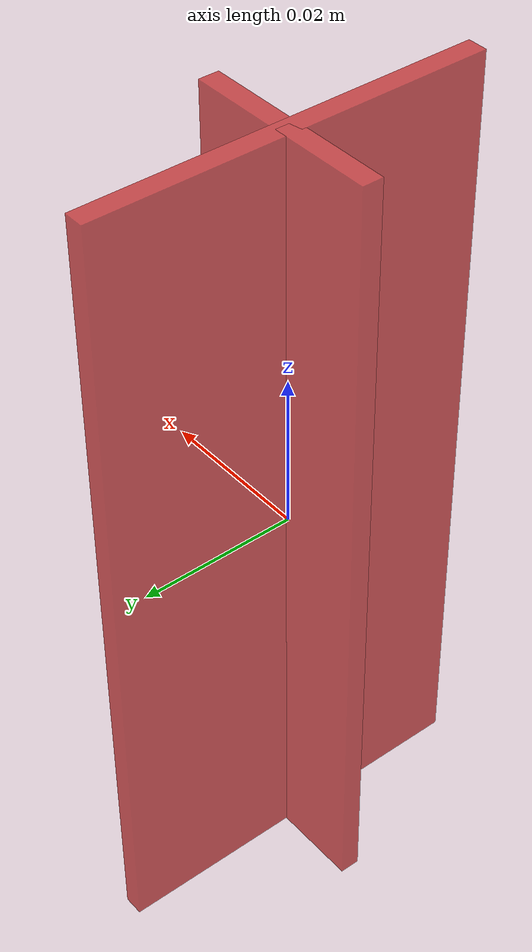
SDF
<?xml version='1.0'?>
<sdf version='1.7'>
  <model name='marker_v2'>
    <link name='link'>
      <inertial>
        <mass>1</mass>
        <inertia>
          <ixx>0.166667</ixx>
          <ixy>0</ixy>
          <ixz>0</ixz>
          <iyy>0.166667</iyy>
          <iyz>0</iyz>
          <izz>0.166667</izz>
        </inertia>
        <pose>0 0 0 0 -0 0</pose>
      </inertial>
      <self_collide>0</self_collide>
      <enable_wind>0</enable_wind>
      <kinematic>0</kinematic>
      <pose>0 0 0 0 -0 0</pose>
      <gravity>0</gravity>
      <visual name='visual'>
        <geometry>
          <box>
            <size>0.025036 0.002564 0.102685</size>
          </box>
        </geometry>
        <material>
          <script>
            <name>Gazebo/Red</name>
            <uri>file://media/materials/scripts/gazebo.material</uri>
          </script>
          <shader type='pixel'>
            <normal_map>__default__</normal_map>
          </shader>
          <diffuse>0.9 0.25 0.1 1</diffuse>
          <ambient>0.3 0.3 0.3 1</ambient>
          <specular>0.01 0.01 0.01 1</specular>
          <emissive>0 0 0 1</emissive>
        </material>
        <pose>0 0 0 0 -0 0</pose>
        <transparency>0.25</transparency>
        <cast_shadows>0</cast_shadows>
      </visual>
    </link>
    <link name='link_clone'>
      <inertial>
        <mass>1</mass>
        <inertia>
          <ixx>0.166667</ixx>
          <ixy>0</ixy>
          <ixz>0</ixz>
          <iyy>0.166667</iyy>
          <iyz>0</iyz>
          <izz>0.166667</izz>
        </inertia>
        <pose>0 0 0 0 -0 0</pose>
      </inertial>
      <self_collide>0</self_collide>
      <enable_wind>0</enable_wind>
      <kinematic>0</kinematic>
      <pose>0 0 0 0 -0 0</pose>
      <gravity>0</gravity>
      <visual name='visual'>
        <geometry>
          <box>
            <size>0.002564 0.050036 0.102685</size>
          </box>
        </geometry>
        <material>
          <script>
            <name>Gazebo/Red</name>
            <uri>file://media/materials/scripts/gazebo.material</uri>
          </script>
          <shader type='pixel'>
            <normal_map>__default__</normal_map>
          </shader>
          <diffuse>0.9 0.25 0.1 1</diffuse>
          <ambient>0.3 0.3 0.3 1</ambient>
          <specular>0.01 0.01 0.01 1</specular>
          <emissive>0 0 0 1</emissive>
        </material>
        <pose>0 0 0 0 -0 0</pose>
        <transparency>0.25</transparency>
        <cast_shadows>0</cast_shadows>
      </visual>
    </link>
    <static>1</static>
    <allow_auto_disable>1</allow_auto_disable>
  </model>
</sdf>
